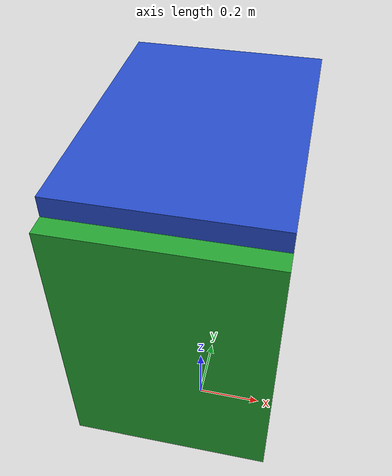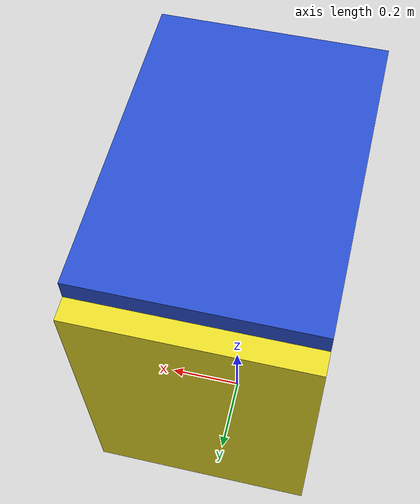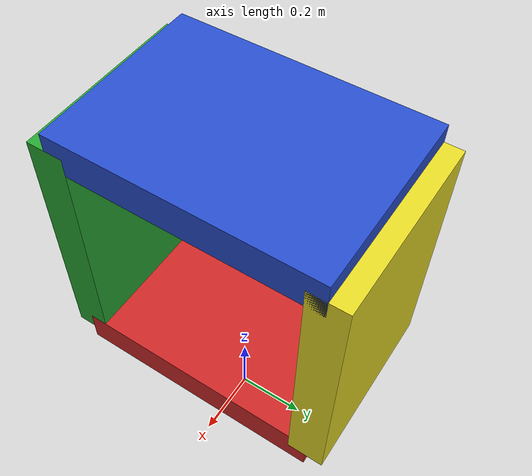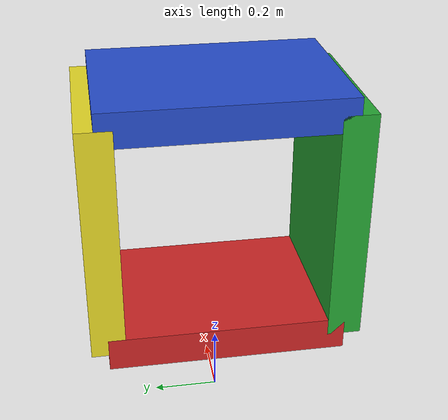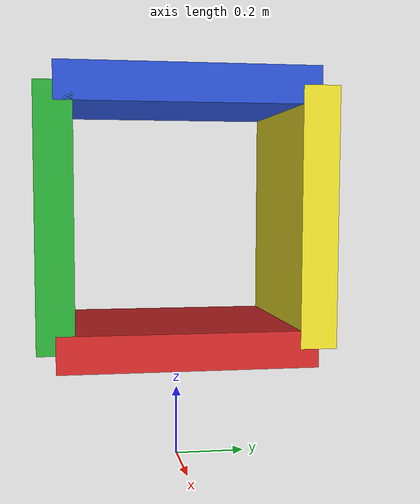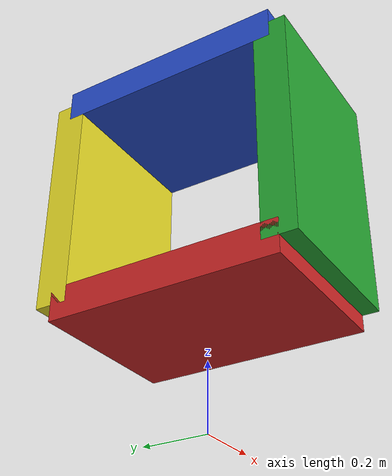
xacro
<?xml version="1.0"?>
<robot xmlns:xacro="http://www.ros.org/wiki/xacro" name="closed_loop">

    <!-- Files to include -->
    <xacro:include filename="$(find closed_loop)/urdf/element.xacro"/>
    <xacro:include filename="$(find closed_loop)/urdf/parameters.xacro"/>

    <!-- Fixed world frame -->
    <link name="world"/>

    <!-- Elements without joints -->
    <xacro:elem name="${element_prefix}_1" m="${mass}" dx="${width}" dy="${height}" dz="${thickness}" is_gravity="$(arg is_gravity)" colour="Red"/>
    <xacro:elem name="${element_prefix}_2" m="${mass}" dx="${width}" dy="${height}" dz="${thickness}" is_gravity="$(arg is_gravity)" colour="Green"/>
    <xacro:elem name="${element_prefix}_3" m="${mass}" dx="${width}" dy="${height}" dz="${thickness}" is_gravity="$(arg is_gravity)" colour="Blue"/>
    <xacro:elem name="${element_prefix}_4" m="${mass}" dx="${width}" dy="${height}" dz="${thickness}" is_gravity="$(arg is_gravity)" colour="Yellow"/>

    <!-- Joints -->
    <!-- 1 to world -->
    <joint name="1_to_world" type="fixed">
        <parent link="world"/>
        <child  link="${element_prefix}_1"/>
        <origin xyz="0 ${height/2} ${height/2}" rpy="0 0 0"/>
    </joint>
    <!-- 2 to 1 -->
    <joint name="2_to_1" type="continuous">
        <axis xyz="1 0 0"/>
        <parent link="${element_prefix}_1"/>
        <child  link="${element_prefix}_2"/>
        <origin xyz="0 ${-height} 0" rpy="${-pi/2} 0 0"/>
    </joint>
    <!-- 3 to 2 -->
    <joint name="3_to_2" type="continuous">
        <axis xyz="1 0 0"/>
        <parent link="${element_prefix}_2"/>
        <child  link="${element_prefix}_3"/>
        <origin xyz="0 ${-height} 0" rpy="${-pi/2} 0 0"/>
    </joint>
    <!-- 4 to 3 -->
    <joint name="4_to_3" type="continuous">
        <axis xyz="1 0 0"/>
        <parent link="${element_prefix}_3"/>
        <child  link="${element_prefix}_4"/>
        <origin xyz="0 ${-height} 0" rpy="${-pi/2} 0 0"/>
    </joint>

    <!-- 1 to 4 - Close the loop by injection of SDF-code into UDRF -->
    <!-- You can even use macro syntax ${} here as illustraded by the
         the variable ${element_name}. -->
    <!-- The location of the joint in the parent frame is determined
         by the location of the child and its initial position! -->
    <gazebo>
        <joint name='1_to_4' type='revolute'>
            <child>${element_prefix}_1</child>
            <parent>${element_prefix}_4</parent>
            <axis>
                <xyz>1 0 0</xyz>
                <limit>
                    <lower>-1e+16</lower>
                    <upper>1e+16</upper>
                </limit>
                <dynamics>
                    <spring_reference>0</spring_reference>
                    <spring_stiffness>0</spring_stiffness>
                </dynamics>
                <use_parent_model_frame>1</use_parent_model_frame>
            </axis>
        </joint>
    </gazebo>

</robot>

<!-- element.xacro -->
<robot xmlns:xacro="http://www.ros.org/wiki/xacro" name="element">

    <!-- Macro for inertia matrix for rectangular box around its center -->
    <xacro:macro name="box_inertial" params="m x y z dx dy dz">
        <inertial>
            <mass  value="${m}"/>
            <origin xyz="${x} ${y} ${z}" rpy="0 0 0"/>
            <inertia ixx="${m/12*(dy*dy + dz*dz)}" ixy="0.0" ixz="0.0"
                     iyy="${m/12*(dx*dx + dz*dz)}" iyz="0.0"
                     izz="${m/12*(dx*dx + dy*dy)}"/>
        </inertial>
    </xacro:macro>

    <!-- Macro for a single element of box geometry -->
    <xacro:macro name="elem" params="name m dx dy dz is_gravity:=false colour:=White">
        <!-- Link without joint -->
        <link name="${name}">
            <visual>
                <geometry>
                    <box size="${dx} ${dy} ${dz}"/>
                </geometry>
                <origin xyz="0 ${-dy/2} 0" rpy="0 0 0"/>
            </visual>
            <collision>
                <geometry>
                    <box size="${dx} ${dy} ${dz}"/>
                </geometry>
                <origin xyz="0 ${-dy/2} 0" rpy="0 0 0"/>
            </collision>
            <xacro:box_inertial m="${mass}"
                                x="0"       y="${-dy/2}"  z="0"
                                dx="${dx}" dy="${dy}"    dz="${dz}"/>
        </link>

        <!-- Gazebo simulation settings -->
        <gazebo reference="${name}">
            <selfCollide>true</selfCollide>
            <static>false</static>
            <turnGravityOff>${not is_gravity}</turnGravityOff>
            <material>Gazebo/${colour}</material>
        </gazebo>
    </xacro:macro>

</robot>

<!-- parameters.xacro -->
<robot xmlns:xacro="http://www.ros.org/wiki/xacro" >

    <!-- Box geometry -->
    <xacro:property name="element_prefix" value="element"/>
    <xacro:property name="width"          value="0.5"/>
    <xacro:property name="height"         value="0.7"/>
    <xacro:property name="thickness"      value="0.1"/>
    <xacro:property name="mass"           value="5.0"/>
    <xacro:arg      name="is_gravity"     default="true"/>

</robot>
